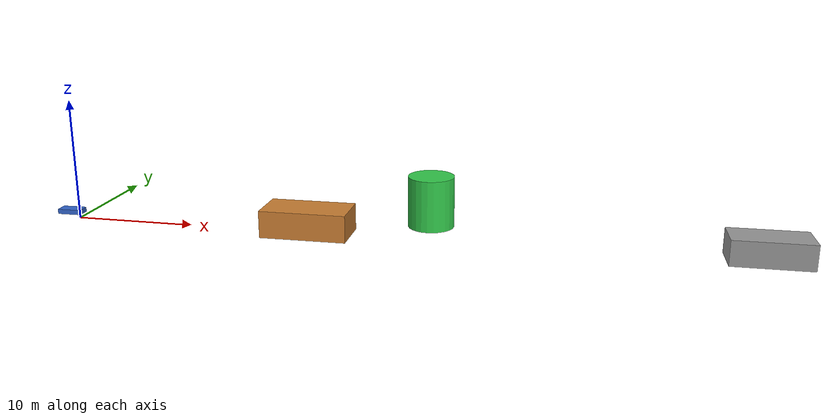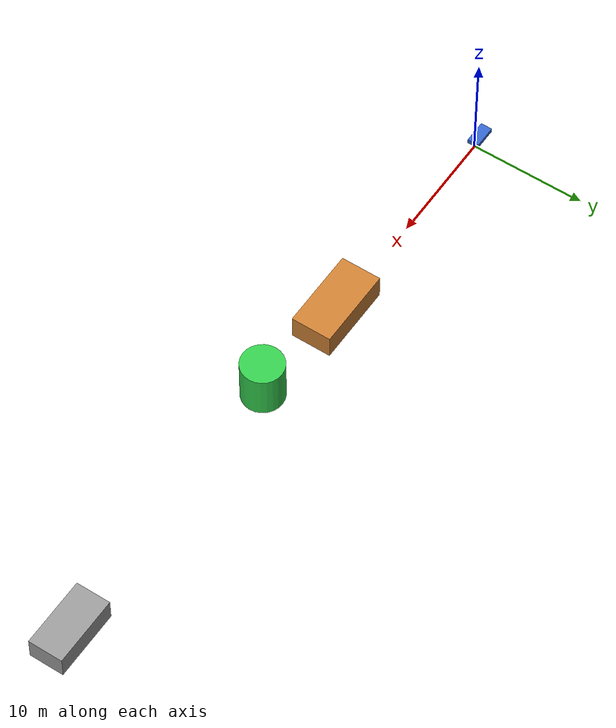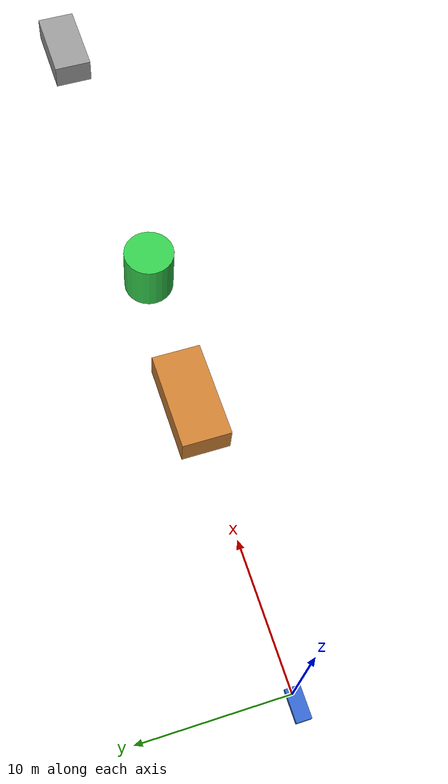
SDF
<?xml version="1.0"?>
<sdf version="1.10">
  <world name="radar_stable_validation_world">
    <gravity>0 0 0</gravity>

    <plugin
      filename="gz-sim-physics-system"
      name="gz::sim::systems::Physics"/>
    <plugin
      filename="gz-sim-user-commands-system"
      name="gz::sim::systems::UserCommands"/>
    <plugin
      filename="gz-sim-scene-broadcaster-system"
      name="gz::sim::systems::SceneBroadcaster"/>

    <plugin filename="libusv_reciprocating_targets_plugin.so" name="usv_4d_radar_gz::ReciprocatingTargetsPlugin">
      <target>
        <name>moving_target_1</name>
        <center>20 0 1.0</center>
        <axis>0 1 0</axis>
        <amplitude>9.0</amplitude>
        <frequency_hz>0.08</frequency_hz>
        <phase>0.0</phase>
      </target>
      <target>
        <name>moving_target_2</name>
        <center>30 0 1.2</center>
        <axis>0 1 0</axis>
        <amplitude>7.0</amplitude>
        <frequency_hz>0.11</frequency_hz>
        <phase>1.57</phase>
      </target>
    </plugin>

    <light name="sun" type="directional">
      <cast_shadows>true</cast_shadows>
      <pose>0 0 100 0 0 0</pose>
      <diffuse>0.8 0.8 0.8 1</diffuse>
      <specular>0.2 0.2 0.2 1</specular>
      <direction>-0.2 0.3 -1</direction>
    </light>

    <model name="ego_usv">
      <static>true</static>
      <pose>0 0 1.0 0 0 0</pose>

      <link name="base_link">
        <collision name="hull_collision">
          <geometry>
            <box>
              <size>2.0 1.0 0.4</size>
            </box>
          </geometry>
          <pose>-0.7 0 -0.4 0 0 0</pose>
        </collision>

        <visual name="hull_visual">
          <geometry>
            <box>
              <size>2.0 1.0 0.4</size>
            </box>
          </geometry>
          <pose>-0.7 0 -0.4 0 0 0</pose>
          <material>
            <ambient>0.1 0.2 0.5 1</ambient>
            <diffuse>0.2 0.4 0.8 1</diffuse>
          </material>
        </visual>
      </link>

      <plugin filename="libusv_4d_radar_plugin.so" name="usv_4d_radar_gz::FourDRadarPlugin">
        <topic>/radar/points_4d</topic>
        <frame_id>world</frame_id>
        <ego_link_name>base_link</ego_link_name>

        <horizontal_fov_deg>100.0</horizontal_fov_deg>
        <vertical_fov_deg>30.0</vertical_fov_deg>
        <azimuth_resolution_deg>1.0</azimuth_resolution_deg>
        <elevation_resolution_deg>1.0</elevation_resolution_deg>

        <min_range>0.8</min_range>
        <max_range>120.0</max_range>
        <update_rate_hz>10.0</update_rate_hz>

        <base_rcs>12.0</base_rcs>
        <rcs_distance_decay>0.01</rcs_distance_decay>

        <enable_sea_clutter>false</enable_sea_clutter>
        <sea_clutter_probability>0.0</sea_clutter_probability>
        <sea_clutter_amplitude>0.0</sea_clutter_amplitude>

        <perception_range_limit_m>300.0</perception_range_limit_m>
        <enable_range_measurement_error>false</enable_range_measurement_error>
        <enable_azimuth_measurement_error>false</enable_azimuth_measurement_error>
        <range_error_at_reference_m>0.66</range_error_at_reference_m>
        <range_error_reference_m>300.0</range_error_reference_m>
        <azimuth_error_std_deg>0.5</azimuth_error_std_deg>
      </plugin>
    </model>

    <model name="target_ship_metal">
      <static>true</static>
      <pose>55 0 1.0 0 0 0</pose>
      <link name="link">
        <collision name="collision">
          <geometry>
            <box>
              <size>6 3 2</size>
            </box>
          </geometry>
        </collision>
        <visual name="visual">
          <geometry>
            <box>
              <size>6 3 2</size>
            </box>
          </geometry>
          <material>
            <ambient>0.4 0.4 0.4 1</ambient>
            <diffuse>0.6 0.6 0.6 1</diffuse>
          </material>
        </visual>
      </link>
    </model>

    <model name="moving_target_1">
      <static>false</static>
      <pose>20 0 1.0 0 0 0</pose>
      <link name="link">
        <collision name="collision">
          <geometry>
            <box>
              <size>7 3.5 2.2</size>
            </box>
          </geometry>
        </collision>
        <visual name="visual">
          <geometry>
            <box>
              <size>7 3.5 2.2</size>
            </box>
          </geometry>
          <material>
            <ambient>0.3 0.2 0.1 1</ambient>
            <diffuse>0.8 0.5 0.2 1</diffuse>
          </material>
        </visual>
      </link>
    </model>

    <model name="moving_target_2">
      <static>false</static>
      <pose>30 0 1.2 0 0 0</pose>
      <link name="link">
        <collision name="collision">
          <geometry>
            <cylinder>
              <radius>1.8</radius>
              <length>4.0</length>
            </cylinder>
          </geometry>
          <pose>0 0 2.0 0 0 0</pose>
        </collision>
        <visual name="visual">
          <geometry>
            <cylinder>
              <radius>1.8</radius>
              <length>4.0</length>
            </cylinder>
          </geometry>
          <pose>0 0 2.0 0 0 0</pose>
          <material>
            <ambient>0.1 0.3 0.1 1</ambient>
            <diffuse>0.2 0.8 0.3 1</diffuse>
          </material>
        </visual>
      </link>
    </model>
  </world>
</sdf>
